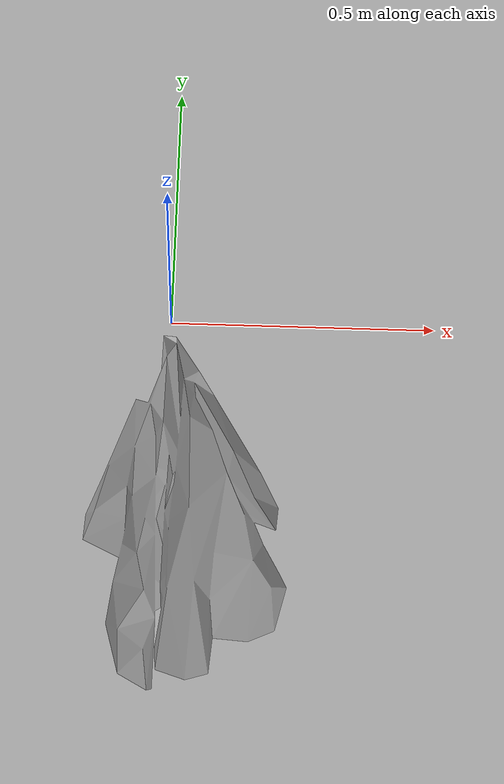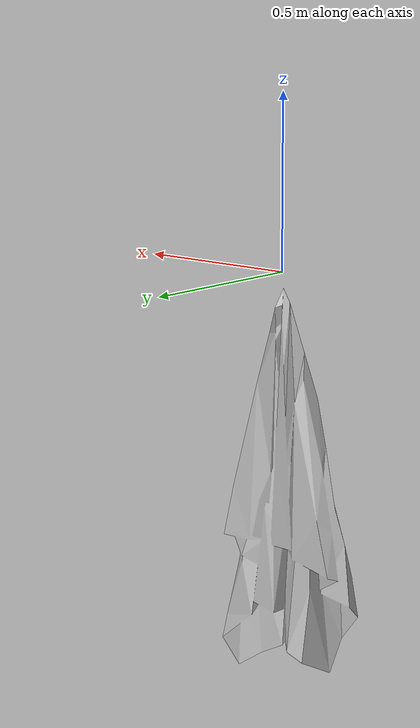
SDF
<?xml version='1.0'?>
<sdf version="1.4">
	<model name="towel_wall">
		<static>1</static>
		<link name="link">
			<visual name="mesh">
				<geometry>
					<mesh>
						<uri>model://meshes/towel_wall.dae</uri>
					</mesh>
				</geometry>
			</visual>
		</link>
	</model>
</sdf>
